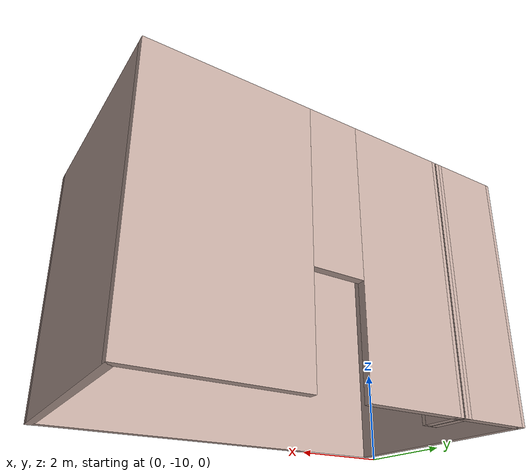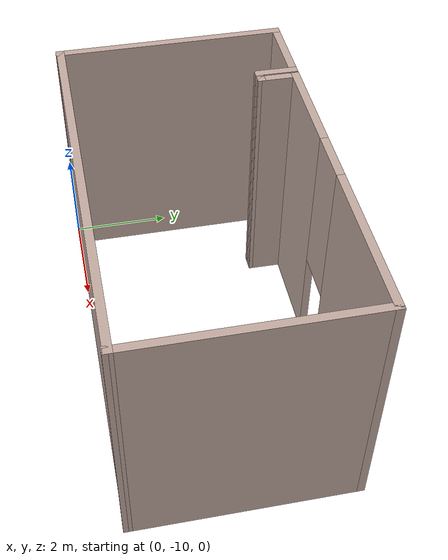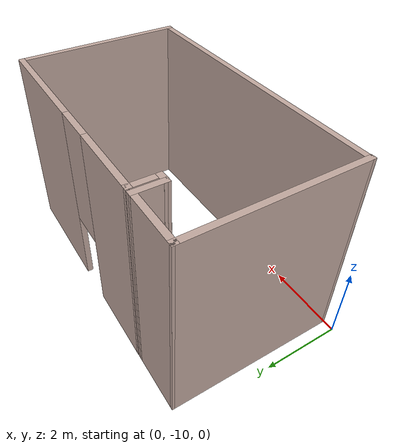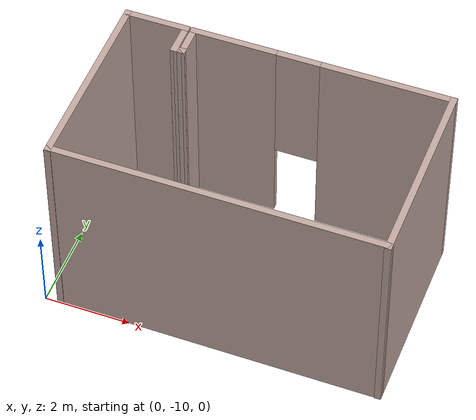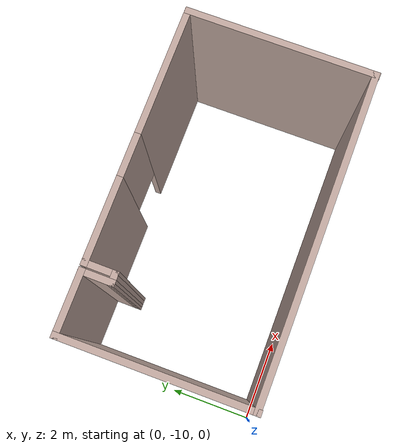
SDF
<?xml version='1.0'?>
<sdf version='1.7'>
  <model name='test_world'>
    <pose>3.91315 -5.00715 0 0 -0 0</pose>
    <link name='Wall_66'>
      <collision name='Wall_66_Collision'>
        <geometry>
          <box>
            <size>1.51411 0.15 5</size>
          </box>
        </geometry>
        <pose>0 0 2.5 0 -0 0</pose>
      </collision>
      <visual name='Wall_66_Visual'>
        <pose>0 0 2.5 0 -0 0</pose>
        <geometry>
          <box>
            <size>1.51411 0.15 5</size>
          </box>
        </geometry>
        <material>
          <script>
            <uri>file://media/materials/scripts/gazebo.material</uri>
            <name>Gazebo/Grey</name>
          </script>
          <ambient>0.760784 0.662745 0.627451 1</ambient>
        </material>
        <meta>
          <layer>0</layer>
        </meta>
      </visual>
      <pose>-2.87309 -0.66715 0 0 -0 0.001025</pose>
    </link>
    <link name='Wall_67'>
      <collision name='Wall_67_Collision'>
        <geometry>
          <box>
            <size>0.809982 0.15 5</size>
          </box>
        </geometry>
        <pose>0 0 2.5 0 -0 0</pose>
      </collision>
      <visual name='Wall_67_Visual'>
        <pose>0 0 2.5 0 -0 0</pose>
        <geometry>
          <box>
            <size>0.809982 0.15 5</size>
          </box>
        </geometry>
        <material>
          <script>
            <uri>file://media/materials/scripts/gazebo.material</uri>
            <name>Gazebo/Grey</name>
          </script>
          <ambient>0.760784 0.662745 0.627451 1</ambient>
        </material>
        <meta>
          <layer>0</layer>
        </meta>
      </visual>
      <pose>-2.19377 -0.99643 0 0 -0 -1.57907</pose>
    </link>
    <link name='Wall_68'>
      <collision name='Wall_68_Collision'>
        <geometry>
          <box>
            <size>0.33 0.15 5</size>
          </box>
        </geometry>
        <pose>0 0 2.5 0 -0 0</pose>
      </collision>
      <visual name='Wall_68_Visual'>
        <pose>0 0 2.5 0 -0 0</pose>
        <geometry>
          <box>
            <size>0.33 0.15 5</size>
          </box>
        </geometry>
        <material>
          <script>
            <uri>file://media/materials/scripts/gazebo.material</uri>
            <name>Gazebo/Grey</name>
          </script>
          <ambient>0.760784 0.662745 0.627451 1</ambient>
        </material>
        <meta>
          <layer>0</layer>
        </meta>
      </visual>
      <pose>-2.1065 -1.32588 0 0 -0 0.005892</pose>
    </link>
    <link name='Wall_70'>
      <pose>0.913146 -0.665365 0 0 -0 0</pose>
      <visual name='Wall_70_Visual_0'>
        <pose>-2.00701 0 2.5 0 -0 0</pose>
        <geometry>
          <box>
            <size>1.98597 0.15 5</size>
          </box>
        </geometry>
        <material>
          <script>
            <uri>file://media/materials/scripts/gazebo.material</uri>
            <name>Gazebo/Grey</name>
          </script>
          <ambient>0.760784 0.662745 0.627451 1</ambient>
        </material>
        <meta>
          <layer>0</layer>
        </meta>
      </visual>
      <collision name='Wall_70_Collision_0'>
        <geometry>
          <box>
            <size>1.98597 0.15 5</size>
          </box>
        </geometry>
        <pose>-2.00701 0 2.5 0 -0 0</pose>
      </collision>
      <visual name='Wall_70_Visual_1'>
        <pose>1.48799 0 2.5 0 -0 0</pose>
        <geometry>
          <box>
            <size>3.02403 0.15 5</size>
          </box>
        </geometry>
        <material>
          <script>
            <uri>file://media/materials/scripts/gazebo.material</uri>
            <name>Gazebo/Grey</name>
          </script>
          <ambient>0.760784 0.662745 0.627451 1</ambient>
        </material>
        <meta>
          <layer>0</layer>
        </meta>
      </visual>
      <collision name='Wall_70_Collision_1'>
        <geometry>
          <box>
            <size>3.02403 0.15 5</size>
          </box>
        </geometry>
        <pose>1.48799 0 2.5 0 -0 0</pose>
      </collision>
      <visual name='Wall_70_Visual_2'>
        <pose>-0.519028 0 3.5 0 -0 0</pose>
        <geometry>
          <box>
            <size>0.99 0.15 3</size>
          </box>
        </geometry>
        <material>
          <script>
            <uri>file://media/materials/scripts/gazebo.material</uri>
            <name>Gazebo/Grey</name>
          </script>
          <ambient>0.760784 0.662745 0.627451 1</ambient>
        </material>
        <meta>
          <layer>0</layer>
        </meta>
      </visual>
      <collision name='Wall_70_Collision_2'>
        <geometry>
          <box>
            <size>0.99 0.15 3</size>
          </box>
        </geometry>
        <pose>-0.519028 0 3.5 0 -0 0</pose>
      </collision>
    </link>
    <link name='Wall_73'>
      <collision name='Wall_73_Collision'>
        <geometry>
          <box>
            <size>4.40488 0.15 5</size>
          </box>
        </geometry>
        <pose>0 0 2.5 0 -0 0</pose>
      </collision>
      <visual name='Wall_73_Visual'>
        <pose>0 0 2.5 0 -0 0</pose>
        <geometry>
          <box>
            <size>4.40488 0.15 5</size>
          </box>
        </geometry>
        <material>
          <script>
            <uri>file://media/materials/scripts/gazebo.material</uri>
            <name>Gazebo/Grey</name>
          </script>
          <ambient>0.760784 0.662745 0.627451 1</ambient>
        </material>
        <meta>
          <layer>0</layer>
        </meta>
      </visual>
      <pose>-3.55515 -2.79529 0 0 -0 1.5708</pose>
    </link>
    <link name='Wall_78'>
      <collision name='Wall_78_Collision'>
        <geometry>
          <box>
            <size>7.54253 0.15 5</size>
          </box>
        </geometry>
        <pose>0 0 2.5 0 -0 0</pose>
      </collision>
      <visual name='Wall_78_Visual'>
        <pose>0 0 2.5 0 -0 0</pose>
        <geometry>
          <box>
            <size>7.54253 0.15 5</size>
          </box>
        </geometry>
        <material>
          <script>
            <uri>file://media/materials/scripts/gazebo.material</uri>
            <name>Gazebo/Grey</name>
          </script>
          <ambient>0.760784 0.662745 0.627451 1</ambient>
        </material>
        <meta>
          <layer>0</layer>
        </meta>
      </visual>
      <pose>0.141118 -4.91359 0 0 -0 -0.001274</pose>
    </link>
    <link name='Wall_79'>
      <collision name='Wall_79_Collision'>
        <geometry>
          <box>
            <size>4.41535 0.15 5</size>
          </box>
        </geometry>
        <pose>0 0 2.5 0 -0 0</pose>
      </collision>
      <visual name='Wall_79_Visual'>
        <pose>0 0 2.5 0 -0 0</pose>
        <geometry>
          <box>
            <size>4.41535 0.15 5</size>
          </box>
        </geometry>
        <material>
          <script>
            <uri>file://media/materials/scripts/gazebo.material</uri>
            <name>Gazebo/Grey</name>
          </script>
          <ambient>0.760784 0.662745 0.627451 1</ambient>
        </material>
        <meta>
          <layer>0</layer>
        </meta>
      </visual>
      <pose>3.83738 -2.79947 0 0 -0 1.5708</pose>
    </link>
    <link name='Wall_86'>
      <collision name='Wall_86_Collision'>
        <geometry>
          <box>
            <size>0.81 0.15 5</size>
          </box>
        </geometry>
        <pose>0 0 2.5 0 -0 0</pose>
      </collision>
      <visual name='Wall_86_Visual'>
        <pose>0 0 2.5 0 -0 0</pose>
        <geometry>
          <box>
            <size>0.81 0.15 5</size>
          </box>
        </geometry>
        <material>
          <script>
            <uri>file://media/materials/scripts/gazebo.material</uri>
            <name>Gazebo/Grey</name>
          </script>
          <ambient>0.760784 0.662745 0.627451 1</ambient>
        </material>
        <meta>
          <layer>0</layer>
        </meta>
      </visual>
      <pose>-2.01418 -0.995357 0 0 -0 1.56375</pose>
    </link>
    <static>1</static>
  </model>
</sdf>
